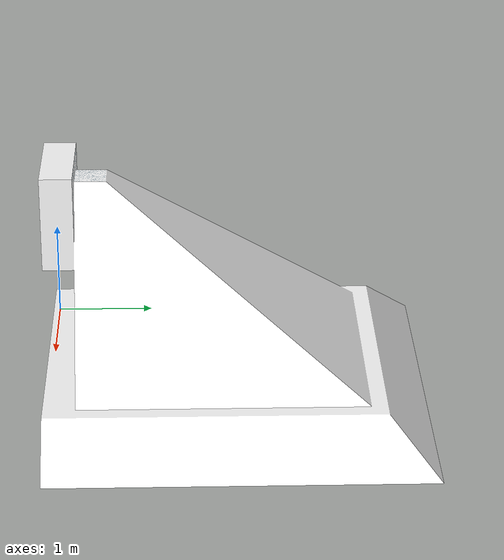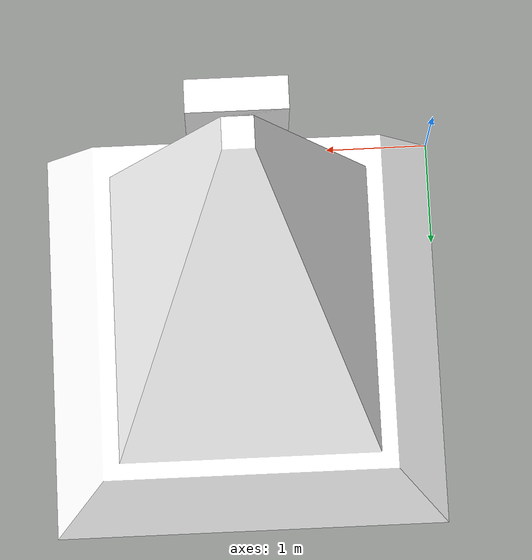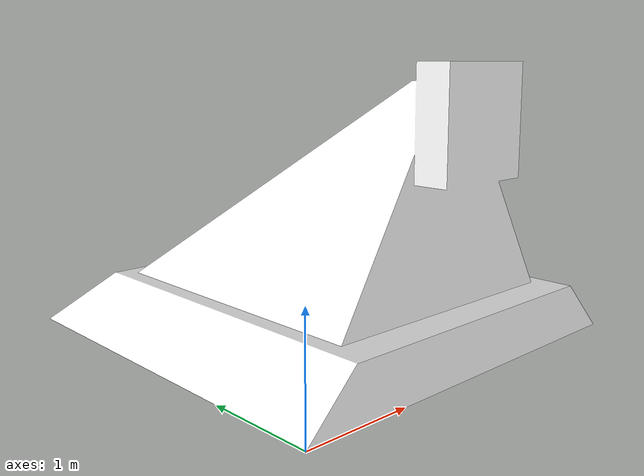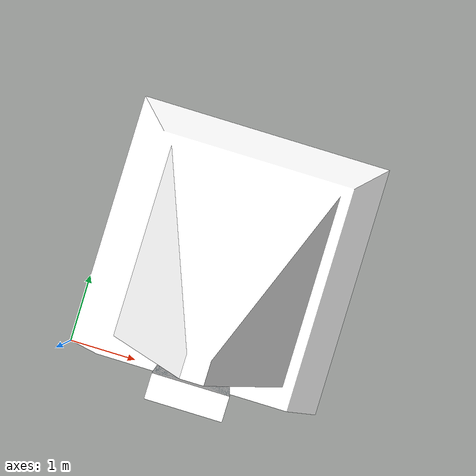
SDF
<?xml version="1.0"?>
<sdf version="1.5">
  <model name="bumper">
    <static>true</static>
    <link name="link">
      <visual name="visual">
        <geometry>
          <mesh>
            <uri>model://bumper/meshes/model.dae</uri>
            <scale>50 50 50</scale>
          </mesh>
        </geometry>
      </visual>
    </link>
  </model>
</sdf>
